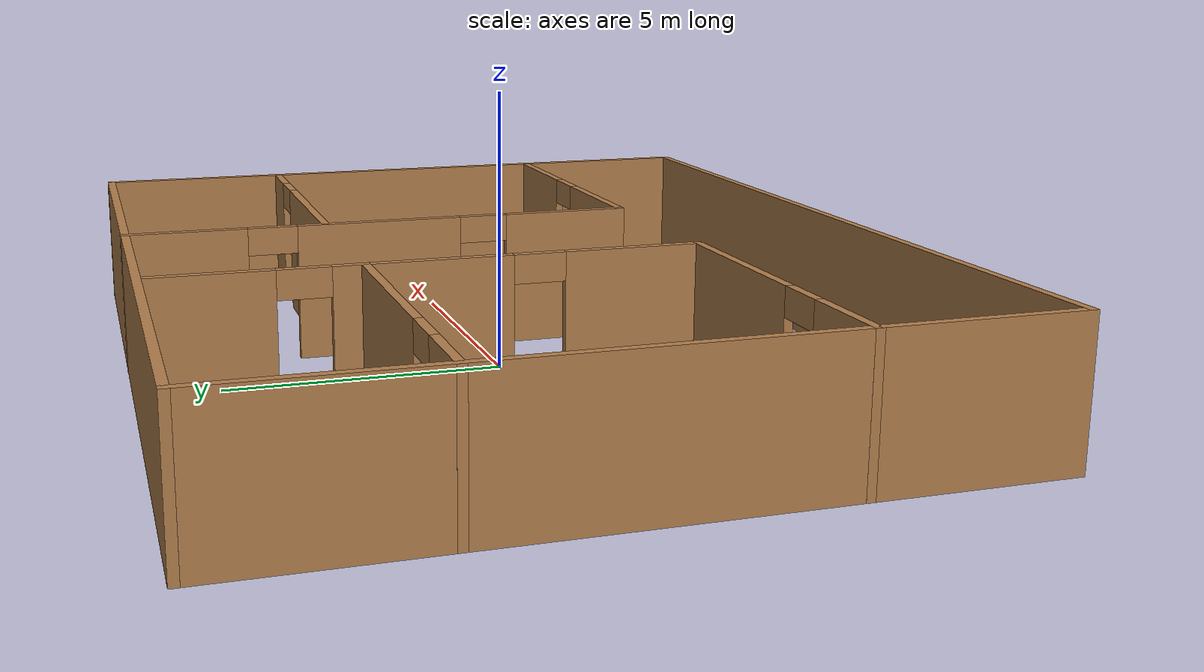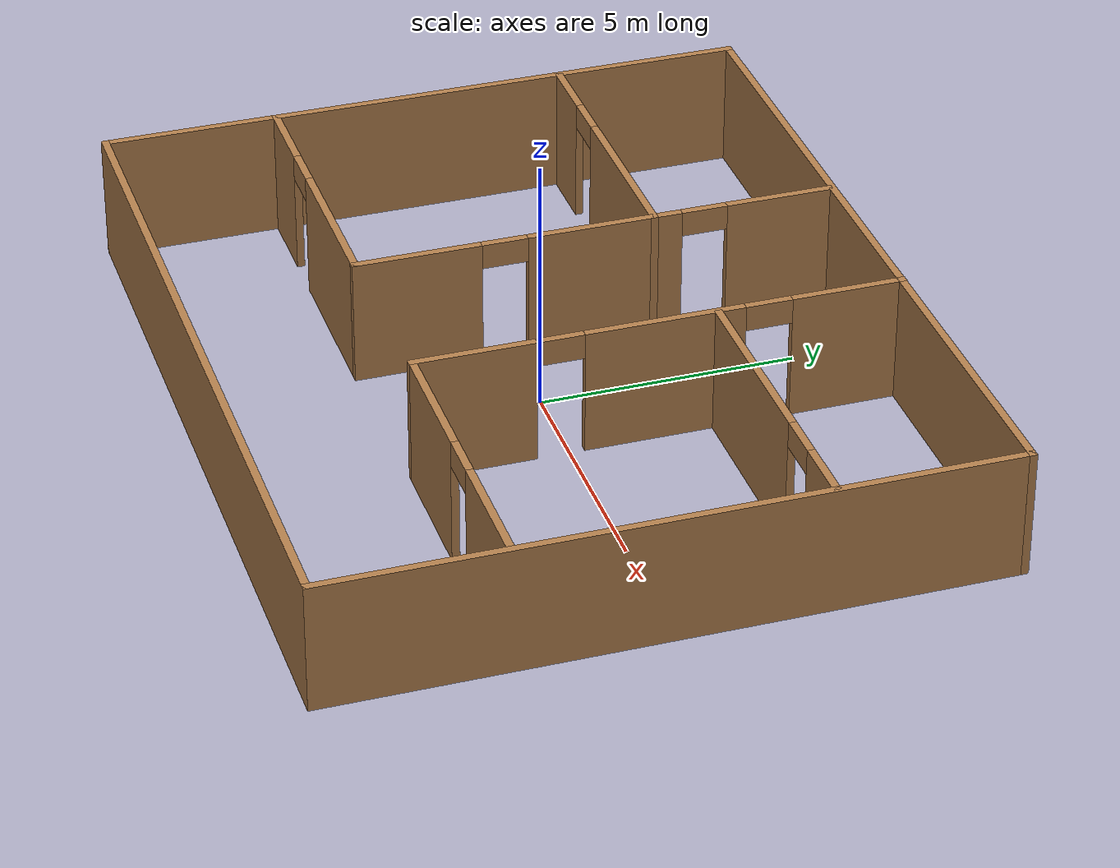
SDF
<?xml version='1.0'?>
<sdf version='1.7'>
  <model name='my_floor'>
    <pose>0.001615 -0.011132 0 0 -0 0</pose>
    <link name='Wall_0'>
      <collision name='Wall_0_Collision'>
        <geometry>
          <box>
            <size>13 0.15 2.5</size>
          </box>
        </geometry>
        <pose>0 0 1.25 0 -0 0</pose>
      </collision>
      <visual name='Wall_0_Visual'>
        <pose>0 0 1.25 0 -0 0</pose>
        <geometry>
          <box>
            <size>13 0.15 2.5</size>
          </box>
        </geometry>
        <material>
          <script>
            <uri>file://media/materials/scripts/gazebo.material</uri>
            <name>Gazebo/Wood</name>
          </script>
          <ambient>1 1 1 1</ambient>
        </material>
        <meta>
          <layer>0</layer>
        </meta>
      </visual>
      <pose>-7.67469 -0.004228 0 0 -0 -1.5708</pose>
    </link>
    <link name='Wall_1'>
      <collision name='Wall_1_Collision'>
        <geometry>
          <box>
            <size>15.5 0.15 2.5</size>
          </box>
        </geometry>
        <pose>0 0 1.25 0 -0 0</pose>
      </collision>
      <visual name='Wall_1_Visual'>
        <pose>0 0 1.25 0 -0 0</pose>
        <geometry>
          <box>
            <size>15.5 0.15 2.5</size>
          </box>
        </geometry>
        <material>
          <script>
            <uri>file://media/materials/scripts/gazebo.material</uri>
            <name>Gazebo/Wood</name>
          </script>
          <ambient>1 1 1 1</ambient>
        </material>
        <meta>
          <layer>0</layer>
        </meta>
      </visual>
      <pose>0.000314 -6.42923 0 0 -0 0</pose>
    </link>
    <link name='Wall_12'>
      <pose>1.69462 1.75423 0 0 -0 -1.5708</pose>
      <visual name='Wall_12_Visual_0'>
        <pose>-3.63395 0 1.25 0 -0 0</pose>
        <geometry>
          <box>
            <size>2.2321 0.15 2.5</size>
          </box>
        </geometry>
        <material>
          <script>
            <uri>file://media/materials/scripts/gazebo.material</uri>
            <name>Gazebo/Wood</name>
          </script>
          <ambient>1 1 1 1</ambient>
        </material>
        <meta>
          <layer>0</layer>
        </meta>
      </visual>
      <collision name='Wall_12_Collision_0'>
        <geometry>
          <box>
            <size>2.2321 0.15 2.5</size>
          </box>
        </geometry>
        <pose>-3.63395 0 1.25 0 -0 0</pose>
      </collision>
      <visual name='Wall_12_Visual_1'>
        <pose>-0.079531 0 1.25 0 -0 0</pose>
        <geometry>
          <box>
            <size>3.07673 0.15 2.5</size>
          </box>
        </geometry>
        <material>
          <script>
            <uri>file://media/materials/scripts/gazebo.material</uri>
            <name>Gazebo/Wood</name>
          </script>
          <ambient>1 1 1 1</ambient>
        </material>
        <meta>
          <layer>0</layer>
        </meta>
      </visual>
      <collision name='Wall_12_Collision_1'>
        <geometry>
          <box>
            <size>3.07673 0.15 2.5</size>
          </box>
        </geometry>
        <pose>-0.079531 0 1.25 0 -0 0</pose>
      </collision>
      <visual name='Wall_12_Visual_2'>
        <pose>3.55442 0 1.25 0 -0 0</pose>
        <geometry>
          <box>
            <size>2.39117 0.15 2.5</size>
          </box>
        </geometry>
        <material>
          <script>
            <uri>file://media/materials/scripts/gazebo.material</uri>
            <name>Gazebo/Wood</name>
          </script>
          <ambient>1 1 1 1</ambient>
        </material>
        <meta>
          <layer>0</layer>
        </meta>
      </visual>
      <collision name='Wall_12_Collision_2'>
        <geometry>
          <box>
            <size>2.39117 0.15 2.5</size>
          </box>
        </geometry>
        <pose>3.55442 0 1.25 0 -0 0</pose>
      </collision>
      <visual name='Wall_12_Visual_3'>
        <pose>-2.0679 0 2.25 0 -0 0</pose>
        <geometry>
          <box>
            <size>0.9 0.15 0.5</size>
          </box>
        </geometry>
        <material>
          <script>
            <uri>file://media/materials/scripts/gazebo.material</uri>
            <name>Gazebo/Wood</name>
          </script>
          <ambient>1 1 1 1</ambient>
        </material>
        <meta>
          <layer>0</layer>
        </meta>
      </visual>
      <collision name='Wall_12_Collision_3'>
        <geometry>
          <box>
            <size>0.9 0.15 0.5</size>
          </box>
        </geometry>
        <pose>-2.0679 0 2.25 0 -0 0</pose>
      </collision>
      <visual name='Wall_12_Visual_4'>
        <pose>1.90883 0 2.25 0 -0 0</pose>
        <geometry>
          <box>
            <size>0.9 0.15 0.5</size>
          </box>
        </geometry>
        <material>
          <script>
            <uri>file://media/materials/scripts/gazebo.material</uri>
            <name>Gazebo/Wood</name>
          </script>
          <ambient>1 1 1 1</ambient>
        </material>
        <meta>
          <layer>0</layer>
        </meta>
      </visual>
      <collision name='Wall_12_Collision_4'>
        <geometry>
          <box>
            <size>0.9 0.15 0.5</size>
          </box>
        </geometry>
        <pose>1.90883 0 2.25 0 -0 0</pose>
      </collision>
    </link>
    <link name='Wall_13'>
      <pose>4.61962 -2.92077 0 0 -0 0</pose>
      <visual name='Wall_13_Visual_0'>
        <pose>-1.63791 0 1.25 0 -0 0</pose>
        <geometry>
          <box>
            <size>2.72418 0.15 2.5</size>
          </box>
        </geometry>
        <material>
          <script>
            <uri>file://media/materials/scripts/gazebo.material</uri>
            <name>Gazebo/Wood</name>
          </script>
          <ambient>1 1 1 1</ambient>
        </material>
        <meta>
          <layer>0</layer>
        </meta>
      </visual>
      <collision name='Wall_13_Collision_0'>
        <geometry>
          <box>
            <size>2.72418 0.15 2.5</size>
          </box>
        </geometry>
        <pose>-1.63791 0 1.25 0 -0 0</pose>
      </collision>
      <visual name='Wall_13_Visual_1'>
        <pose>1.81209 0 1.25 0 -0 0</pose>
        <geometry>
          <box>
            <size>2.37582 0.15 2.5</size>
          </box>
        </geometry>
        <material>
          <script>
            <uri>file://media/materials/scripts/gazebo.material</uri>
            <name>Gazebo/Wood</name>
          </script>
          <ambient>1 1 1 1</ambient>
        </material>
        <meta>
          <layer>0</layer>
        </meta>
      </visual>
      <collision name='Wall_13_Collision_1'>
        <geometry>
          <box>
            <size>2.37582 0.15 2.5</size>
          </box>
        </geometry>
        <pose>1.81209 0 1.25 0 -0 0</pose>
      </collision>
      <visual name='Wall_13_Visual_2'>
        <pose>0.174177 0 2.25 0 -0 0</pose>
        <geometry>
          <box>
            <size>0.9 0.15 0.5</size>
          </box>
        </geometry>
        <material>
          <script>
            <uri>file://media/materials/scripts/gazebo.material</uri>
            <name>Gazebo/Wood</name>
          </script>
          <ambient>1 1 1 1</ambient>
        </material>
        <meta>
          <layer>0</layer>
        </meta>
      </visual>
      <collision name='Wall_13_Collision_2'>
        <geometry>
          <box>
            <size>0.9 0.15 0.5</size>
          </box>
        </geometry>
        <pose>0.174177 0 2.25 0 -0 0</pose>
      </collision>
    </link>
    <link name='Wall_15'>
      <pose>4.69036 2.84324 0 0 -0 0</pose>
      <visual name='Wall_15_Visual_0'>
        <pose>-1.07677 0 1.25 0 -0 0</pose>
        <geometry>
          <box>
            <size>3.84645 0.15 2.5</size>
          </box>
        </geometry>
        <material>
          <script>
            <uri>file://media/materials/scripts/gazebo.material</uri>
            <name>Gazebo/Wood</name>
          </script>
          <ambient>1 1 1 1</ambient>
        </material>
        <meta>
          <layer>0</layer>
        </meta>
      </visual>
      <collision name='Wall_15_Collision_0'>
        <geometry>
          <box>
            <size>3.84645 0.15 2.5</size>
          </box>
        </geometry>
        <pose>-1.07677 0 1.25 0 -0 0</pose>
      </collision>
      <visual name='Wall_15_Visual_1'>
        <pose>2.37323 0 1.25 0 -0 0</pose>
        <geometry>
          <box>
            <size>1.25355 0.15 2.5</size>
          </box>
        </geometry>
        <material>
          <script>
            <uri>file://media/materials/scripts/gazebo.material</uri>
            <name>Gazebo/Wood</name>
          </script>
          <ambient>1 1 1 1</ambient>
        </material>
        <meta>
          <layer>0</layer>
        </meta>
      </visual>
      <collision name='Wall_15_Collision_1'>
        <geometry>
          <box>
            <size>1.25355 0.15 2.5</size>
          </box>
        </geometry>
        <pose>2.37323 0 1.25 0 -0 0</pose>
      </collision>
      <visual name='Wall_15_Visual_2'>
        <pose>1.29645 0 2.25 0 -0 0</pose>
        <geometry>
          <box>
            <size>0.9 0.15 0.5</size>
          </box>
        </geometry>
        <material>
          <script>
            <uri>file://media/materials/scripts/gazebo.material</uri>
            <name>Gazebo/Wood</name>
          </script>
          <ambient>1 1 1 1</ambient>
        </material>
        <meta>
          <layer>0</layer>
        </meta>
      </visual>
      <collision name='Wall_15_Collision_2'>
        <geometry>
          <box>
            <size>0.9 0.15 0.5</size>
          </box>
        </geometry>
        <pose>1.29645 0 2.25 0 -0 0</pose>
      </collision>
    </link>
    <link name='Wall_2'>
      <collision name='Wall_2_Collision'>
        <geometry>
          <box>
            <size>13 0.15 2.5</size>
          </box>
        </geometry>
        <pose>0 0 1.25 0 -0 0</pose>
      </collision>
      <visual name='Wall_2_Visual'>
        <pose>0 0 1.25 0 -0 0</pose>
        <geometry>
          <box>
            <size>13 0.15 2.5</size>
          </box>
        </geometry>
        <material>
          <script>
            <uri>file://media/materials/scripts/gazebo.material</uri>
            <name>Gazebo/Wood</name>
          </script>
          <ambient>1 1 1 1</ambient>
        </material>
        <meta>
          <layer>0</layer>
        </meta>
      </visual>
      <pose>7.67531 -0.004228 0 0 -0 1.5708</pose>
    </link>
    <link name='Wall_3'>
      <collision name='Wall_3_Collision'>
        <geometry>
          <box>
            <size>15.5 0.15 2.5</size>
          </box>
        </geometry>
        <pose>0 0 1.25 0 -0 0</pose>
      </collision>
      <visual name='Wall_3_Visual'>
        <pose>0 0 1.25 0 -0 0</pose>
        <geometry>
          <box>
            <size>15.5 0.15 2.5</size>
          </box>
        </geometry>
        <material>
          <script>
            <uri>file://media/materials/scripts/gazebo.material</uri>
            <name>Gazebo/Wood</name>
          </script>
          <ambient>1 1 1 1</ambient>
        </material>
        <meta>
          <layer>0</layer>
        </meta>
      </visual>
      <pose>0.000314 6.42077 0 0 -0 3.14159</pose>
    </link>
    <link name='Wall_5'>
      <pose>-4.75031 2.82197 0 0 -0 0</pose>
      <visual name='Wall_5_Visual_0'>
        <pose>-2.29094 0 1.25 0 -0 0</pose>
        <geometry>
          <box>
            <size>1.41812 0.15 2.5</size>
          </box>
        </geometry>
        <material>
          <script>
            <uri>file://media/materials/scripts/gazebo.material</uri>
            <name>Gazebo/Wood</name>
          </script>
          <ambient>1 1 1 1</ambient>
        </material>
        <meta>
          <layer>0</layer>
        </meta>
      </visual>
      <collision name='Wall_5_Collision_0'>
        <geometry>
          <box>
            <size>1.41812 0.15 2.5</size>
          </box>
        </geometry>
        <pose>-2.29094 0 1.25 0 -0 0</pose>
      </collision>
      <visual name='Wall_5_Visual_1'>
        <pose>1.15906 0 1.25 0 -0 0</pose>
        <geometry>
          <box>
            <size>3.68188 0.15 2.5</size>
          </box>
        </geometry>
        <material>
          <script>
            <uri>file://media/materials/scripts/gazebo.material</uri>
            <name>Gazebo/Wood</name>
          </script>
          <ambient>1 1 1 1</ambient>
        </material>
        <meta>
          <layer>0</layer>
        </meta>
      </visual>
      <collision name='Wall_5_Collision_1'>
        <geometry>
          <box>
            <size>3.68188 0.15 2.5</size>
          </box>
        </geometry>
        <pose>1.15906 0 1.25 0 -0 0</pose>
      </collision>
      <visual name='Wall_5_Visual_2'>
        <pose>-1.13188 0 2.25 0 -0 0</pose>
        <geometry>
          <box>
            <size>0.9 0.15 0.5</size>
          </box>
        </geometry>
        <material>
          <script>
            <uri>file://media/materials/scripts/gazebo.material</uri>
            <name>Gazebo/Wood</name>
          </script>
          <ambient>1 1 1 1</ambient>
        </material>
        <meta>
          <layer>0</layer>
        </meta>
      </visual>
      <collision name='Wall_5_Collision_2'>
        <geometry>
          <box>
            <size>0.9 0.15 0.5</size>
          </box>
        </geometry>
        <pose>-1.13188 0 2.25 0 -0 0</pose>
      </collision>
    </link>
    <link name='Wall_7'>
      <pose>-4.75031 -3.01096 0 0 -0 0</pose>
      <visual name='Wall_7_Visual_0'>
        <pose>-2.15328 0 1.25 0 -0 0</pose>
        <geometry>
          <box>
            <size>1.69343 0.15 2.5</size>
          </box>
        </geometry>
        <material>
          <script>
            <uri>file://media/materials/scripts/gazebo.material</uri>
            <name>Gazebo/Wood</name>
          </script>
          <ambient>1 1 1 1</ambient>
        </material>
        <meta>
          <layer>0</layer>
        </meta>
      </visual>
      <collision name='Wall_7_Collision_0'>
        <geometry>
          <box>
            <size>1.69343 0.15 2.5</size>
          </box>
        </geometry>
        <pose>-2.15328 0 1.25 0 -0 0</pose>
      </collision>
      <visual name='Wall_7_Visual_1'>
        <pose>1.29672 0 1.25 0 -0 0</pose>
        <geometry>
          <box>
            <size>3.40657 0.15 2.5</size>
          </box>
        </geometry>
        <material>
          <script>
            <uri>file://media/materials/scripts/gazebo.material</uri>
            <name>Gazebo/Wood</name>
          </script>
          <ambient>1 1 1 1</ambient>
        </material>
        <meta>
          <layer>0</layer>
        </meta>
      </visual>
      <collision name='Wall_7_Collision_1'>
        <geometry>
          <box>
            <size>3.40657 0.15 2.5</size>
          </box>
        </geometry>
        <pose>1.29672 0 1.25 0 -0 0</pose>
      </collision>
      <visual name='Wall_7_Visual_2'>
        <pose>-0.856569 0 2.25 0 -0 0</pose>
        <geometry>
          <box>
            <size>0.9 0.15 0.5</size>
          </box>
        </geometry>
        <material>
          <script>
            <uri>file://media/materials/scripts/gazebo.material</uri>
            <name>Gazebo/Wood</name>
          </script>
          <ambient>1 1 1 1</ambient>
        </material>
        <meta>
          <layer>0</layer>
        </meta>
      </visual>
      <collision name='Wall_7_Collision_2'>
        <geometry>
          <box>
            <size>0.9 0.15 0.5</size>
          </box>
        </geometry>
        <pose>-0.856569 0 2.25 0 -0 0</pose>
      </collision>
    </link>
    <link name='Wall_8'>
      <pose>-1.82532 1.66404 0 0 -0 1.5708</pose>
      <visual name='Wall_8_Visual_0'>
        <pose>-3.49403 0 1.25 0 -0 0</pose>
        <geometry>
          <box>
            <size>2.51195 0.15 2.5</size>
          </box>
        </geometry>
        <material>
          <script>
            <uri>file://media/materials/scripts/gazebo.material</uri>
            <name>Gazebo/Wood</name>
          </script>
          <ambient>1 1 1 1</ambient>
        </material>
        <meta>
          <layer>0</layer>
        </meta>
      </visual>
      <collision name='Wall_8_Collision_0'>
        <geometry>
          <box>
            <size>2.51195 0.15 2.5</size>
          </box>
        </geometry>
        <pose>-3.49403 0 1.25 0 -0 0</pose>
      </collision>
      <visual name='Wall_8_Visual_1'>
        <pose>0.185017 0 1.25 0 -0 0</pose>
        <geometry>
          <box>
            <size>3.04614 0.15 2.5</size>
          </box>
        </geometry>
        <material>
          <script>
            <uri>file://media/materials/scripts/gazebo.material</uri>
            <name>Gazebo/Wood</name>
          </script>
          <ambient>1 1 1 1</ambient>
        </material>
        <meta>
          <layer>0</layer>
        </meta>
      </visual>
      <collision name='Wall_8_Collision_1'>
        <geometry>
          <box>
            <size>3.04614 0.15 2.5</size>
          </box>
        </geometry>
        <pose>0.185017 0 1.25 0 -0 0</pose>
      </collision>
      <visual name='Wall_8_Visual_2'>
        <pose>3.67904 0 1.25 0 -0 0</pose>
        <geometry>
          <box>
            <size>2.14191 0.15 2.5</size>
          </box>
        </geometry>
        <material>
          <script>
            <uri>file://media/materials/scripts/gazebo.material</uri>
            <name>Gazebo/Wood</name>
          </script>
          <ambient>1 1 1 1</ambient>
        </material>
        <meta>
          <layer>0</layer>
        </meta>
      </visual>
      <collision name='Wall_8_Collision_2'>
        <geometry>
          <box>
            <size>2.14191 0.15 2.5</size>
          </box>
        </geometry>
        <pose>3.67904 0 1.25 0 -0 0</pose>
      </collision>
      <visual name='Wall_8_Visual_3'>
        <pose>-1.78805 0 2.25 0 -0 0</pose>
        <geometry>
          <box>
            <size>0.9 0.15 0.5</size>
          </box>
        </geometry>
        <material>
          <script>
            <uri>file://media/materials/scripts/gazebo.material</uri>
            <name>Gazebo/Wood</name>
          </script>
          <ambient>1 1 1 1</ambient>
        </material>
        <meta>
          <layer>0</layer>
        </meta>
      </visual>
      <collision name='Wall_8_Collision_3'>
        <geometry>
          <box>
            <size>0.9 0.15 0.5</size>
          </box>
        </geometry>
        <pose>-1.78805 0 2.25 0 -0 0</pose>
      </collision>
      <visual name='Wall_8_Visual_4'>
        <pose>2.15809 0 2.25 0 -0 0</pose>
        <geometry>
          <box>
            <size>0.9 0.15 0.5</size>
          </box>
        </geometry>
        <material>
          <script>
            <uri>file://media/materials/scripts/gazebo.material</uri>
            <name>Gazebo/Wood</name>
          </script>
          <ambient>1 1 1 1</ambient>
        </material>
        <meta>
          <layer>0</layer>
        </meta>
      </visual>
      <collision name='Wall_8_Collision_4'>
        <geometry>
          <box>
            <size>0.9 0.15 0.5</size>
          </box>
        </geometry>
        <pose>2.15809 0 2.25 0 -0 0</pose>
      </collision>
    </link>
    <static>1</static>
  </model>
</sdf>
